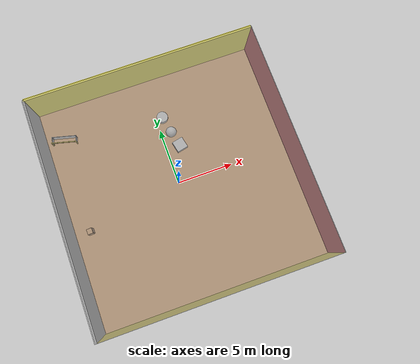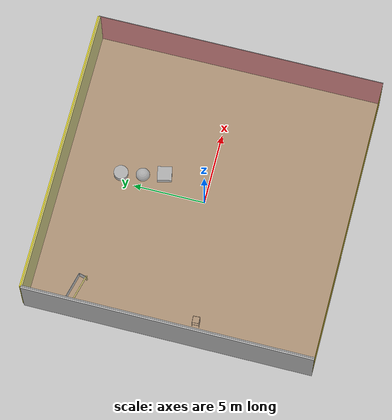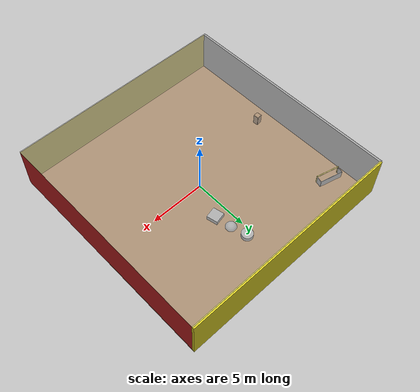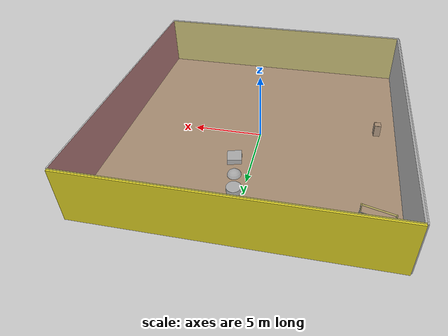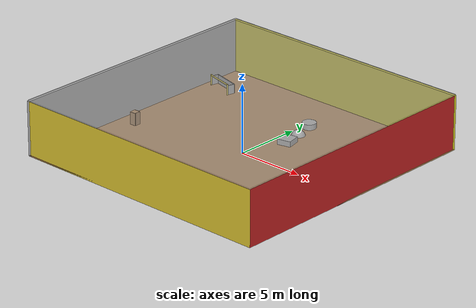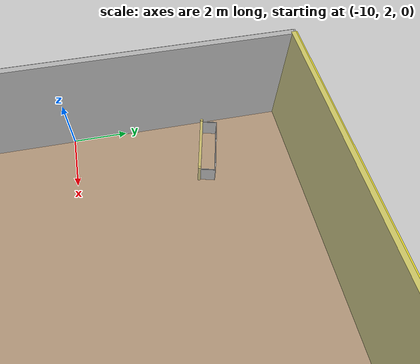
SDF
<sdf version="1.4">
 <world name="default">
  <physics type="ode">
   <max_step_size>0.001</max_step_size>
   <real_time_factor>1</real_time_factor>
   <real_time_update_rate>1000</real_time_update_rate>
   <gravity>0 0 -9.8</gravity>
  </physics>
  <scene><ambient>0.4 0.4 0.4 1</ambient><background>0.7 0.7 0.7 1</background><shadows>1</shadows></scene>
  <model name="Surrounding">
   <static>1</static>
   <link name="Ceiling">
    <collision name="Ceiling_Collision"><geometry><box><size>20 20 0.1</size></box></geometry></collision>
    <visual name="Ceiling_Visual">
     <geometry><box><size>20 20 0.1</size></box></geometry>
     <material>
      <script><uri>file://media/materials/scripts/gazebo.material</uri><name>Gazebo/GreyTransparent</name></script>
     </material>
    </visual>
    <pose>0 0 4.05 0 0 0</pose>
   </link>
   <link name="Wall_South">
    <collision name="Wall_South_Collision">
     <geometry><box><size>20 0 4</size></box></geometry>
     <pose>0 0 2 0 -0 0</pose>
    </collision>
    <visual name="Wall_South_Visual">
     <pose>0 0 2 0 -0 0</pose>
     <geometry><box><size>20 0 4</size></box></geometry>
     <material>
      <script><uri>file://media/materials/scripts/gazebo.material</uri><name>Gazebo/ZincYellow</name></script>
     </material>
    </visual>
    <velocity_decay><linear>0</linear><angular>0</angular></velocity_decay>
    <pose>0 -10 0 0 -0 0</pose>
   </link>
   <link name="Wall_East">
    <collision name="Wall_21_Collision">
     <geometry><box><size>20 0 4</size></box></geometry>
     <pose>0 0 2 0 -0 0</pose>
    </collision>
    <visual name="Wall_21_Visual">
     <pose>0 0 2 0 -0 0</pose>
     <geometry><box><size>20 0 4</size></box></geometry>
     <material>
      <script><uri>file://media/materials/scripts/gazebo.material</uri><name>Gazebo/RedGlow</name></script>
     </material>
    </visual>
    <velocity_decay><linear>0</linear><angular>0</angular></velocity_decay>
    <pose>10 0 0 0 -0 1.5708</pose>
   </link>
   <link name="Wall_North">
    <collision name="Wall_22_Collision">
     <geometry><box><size>20 0.2 4</size></box></geometry>
     <pose>0 0 2 0 -0 0</pose>
    </collision>
    <visual name="Wall_22_Visual">
     <pose>0 0 2 0 -0 0</pose>
     <geometry><box><size>20 0.2 4</size></box></geometry>
     <material>
      <script><uri>file://media/materials/scripts/gazebo.material</uri><name>Gazebo/YellowGlow</name></script>
     </material>
    </visual>
    <velocity_decay><linear>0</linear><angular>0</angular></velocity_decay>
    <pose>0 10 0 0 -0 0</pose>
   </link>
   <link name="Wall_West">
    <collision name="Wall_23_Collision">
     <geometry><box><size>20 0.2 4</size></box></geometry>
     <pose>0 0 2 0 -0 0</pose>
    </collision>
    <visual name="Wall_23_Visual">
     <pose>0 0 2 0 -0 0</pose>
     <geometry><box><size>20 0.2 4</size></box></geometry>
     <material>
      <script><uri>file://media/materials/scripts/gazebo.material</uri><name>Gazebo/LightOff</name></script>
     </material>
    </visual>
    <velocity_decay><linear>0</linear><angular>0</angular></velocity_decay>
    <pose>-10 0 0 0 0 -1.5708</pose>
   </link>
   <link name="Ground_link">
    <collision name="collision">
     <pose>0 0 .05 0 -0 0</pose>
     <geometry><box><size>20 20 0.1</size></box></geometry>
    </collision>
    <visual name="visual">
     <pose>0 0 .05 0 -0 0</pose>
     <geometry><box><size>20 20 0.1</size></box></geometry>
     <material>
      <script><uri>file://media/materials/scripts/gazebo.material</uri><name>Gazebo/WoodFloor</name></script>
     </material>
    </visual>
   </link>
   <static>1</static>
  </model>
  <spherical_coordinates>
   <surface_model>EARTH_WGS84</surface_model>
   <latitude_deg>0</latitude_deg>
   <longitude_deg>0</longitude_deg>
   <elevation>0</elevation>
   <heading_deg>0</heading_deg>
  </spherical_coordinates>
  <light name="lightball_0" type="diffuse">
   <diffuse>0.8 0.8 0.8 1</diffuse>
   <specular>0.2 0.2 0.2 1</specular>
   <attenuation>
    <range>100</range>
    <constant>0.7</constant>
    <linear>0.01</linear>
    <quadratic>0.001</quadratic>
   </attenuation>
   <direction>-0.5 0.1 -0.9</direction>
   <pose>-1.29155754246 -2.591434004 3.73610627514 0 0 0</pose>
  </light>
  <light name="lightball_1" type="diffuse">
   <diffuse>0.8 0.8 0.8 1</diffuse>
   <specular>0.2 0.2 0.2 1</specular>
   <attenuation>
    <range>100</range>
    <constant>0.7</constant>
    <linear>0.01</linear>
    <quadratic>0.001</quadratic>
   </attenuation>
   <direction>-0.5 0.1 -0.9</direction>
   <pose>5.997189561 -4.57302275776 1.16903516043 0 0 0</pose>
  </light>
  <light name="lightball_2" type="diffuse">
   <diffuse>0.8 0.8 0.8 1</diffuse>
   <specular>0.2 0.2 0.2 1</specular>
   <attenuation>
    <range>100</range>
    <constant>0.7</constant>
    <linear>0.01</linear>
    <quadratic>0.001</quadratic>
   </attenuation>
   <direction>-0.5 0.1 -0.9</direction>
   <pose>-8.05813632486 -6.50387849876 2.08735250534 0 0 0</pose>
  </light>
  <light name="lightball_3" type="diffuse">
   <diffuse>0.8 0.8 0.8 1</diffuse>
   <specular>0.2 0.2 0.2 1</specular>
   <attenuation>
    <range>100</range>
    <constant>0.7</constant>
    <linear>0.01</linear>
    <quadratic>0.001</quadratic>
   </attenuation>
   <direction>-0.5 0.1 -0.9</direction>
   <pose>2.71293887337 5.96741877951 2.98597512871 0 0 0</pose>
  </light>
  <light name="lightball_4" type="diffuse">
   <diffuse>0.8 0.8 0.8 1</diffuse>
   <specular>0.2 0.2 0.2 1</specular>
   <attenuation>
    <range>100</range>
    <constant>0.7</constant>
    <linear>0.01</linear>
    <quadratic>0.001</quadratic>
   </attenuation>
   <direction>-0.5 0.1 -0.9</direction>
   <pose>-9.40738092713 6.69734326239 3.75618502431 0 0 0</pose>
  </light>
  <light name="lightball_5" type="diffuse">
   <diffuse>0.8 0.8 0.8 1</diffuse>
   <specular>0.2 0.2 0.2 1</specular>
   <attenuation>
    <range>100</range>
    <constant>0.7</constant>
    <linear>0.01</linear>
    <quadratic>0.001</quadratic>
   </attenuation>
   <direction>-0.5 0.1 -0.9</direction>
   <pose>8.54061769636 -8.75705525696 2.98269568545 0 0 0</pose>
  </light>
  <light name="lightball_6" type="diffuse">
   <diffuse>0.8 0.8 0.8 1</diffuse>
   <specular>0.2 0.2 0.2 1</specular>
   <attenuation>
    <range>100</range>
    <constant>0.7</constant>
    <linear>0.01</linear>
    <quadratic>0.001</quadratic>
   </attenuation>
   <direction>-0.5 0.1 -0.9</direction>
   <pose>3.68931730716 6.32844251958 1.81958151671 0 0 0</pose>
  </light>
  <include><uri>model://cabinet</uri><pose>-8.51083972739 -1.59500065203 0 0 0 0.0533229716681</pose></include>
  <include>
   <uri>model://robocup_3Dsim_goal</uri>
   <pose>-8.370386103 6.60897196141 0 0 0 1.32304293084</pose>
  </include>
  <include>
   <uri>model://textured_shapes</uri>
   <pose>0.900057464726 4.59168123479 0 0 0 0.218277072927</pose>
  </include>
 </world>
</sdf>

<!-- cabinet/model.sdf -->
<sdf version="1.5">
  <model name="cabinet">
    <static>true</static>
    <link name="cabinet_bottom_plate">
      <inertial>
        <pose>0 0 -1 0 0 0</pose>
        <inertia>
          <ixx>2.050000</ixx>
          <ixy>0</ixy>
          <ixz>0</ixz>
          <iyy>2.050000</iyy>
          <iyz>0</iyz>
          <izz>2.050000</izz>
        </inertia>
        <mass>25.000000</mass>
      </inertial>
      <collision name="cabinet_bottom_plate_geom">
        <pose>0 0 0.010000 0 0 0</pose>
        <geometry>
          <box>
            <size>0.450000 0.450000 0.020000</size>
          </box>
        </geometry>
      </collision>
      <visual name="cabinet_bottom_plate_geom_visual">
        <pose>0 0 0.010000 0 0 0</pose>
        <geometry>
          <box>
            <size>0.450000 0.450000 0.020000</size>
          </box>
        </geometry>
        <material>
          <script>
            <uri>model://media/materials/scripts/gazebo.material</uri>
            <name>Gazebo/Wood</name>
          </script>
        </material>
      </visual>
      <collision name="cabinet_bottom_plate_geom_cabinet_back_plate">
        <pose>0.235000 0 0.510000 0 0 0</pose>
        <geometry>
          <box>
            <size>0.020000 0.450000 1.020000</size>
          </box>
        </geometry>
      </collision>
      <visual name="cabinet_bottom_plate_geom_cabinet_back_plate_visual">
        <pose>0.235000 0 0.510000 0 0 0</pose>
        <geometry>
          <box>
            <size>0.020000 0.450000 1.020000</size>
          </box>
        </geometry>
        <material>
          <script>
            <uri>model://media/materials/scripts/gazebo.material</uri>
            <name>Gazebo/Wood</name>
          </script>
        </material>
      </visual>
      <collision name="cabinet_bottom_plate_geom_cabinet_left_plate">
        <pose>0 0.235000 0.510000 0 0 0</pose>
        <geometry>
          <box>
            <size>0.450000 0.020000 1.020000</size>
          </box>
        </geometry>
      </collision>
      <visual name="cabinet_bottom_plate_geom_cabinet_left_plate_visual">
        <pose>0 0.235000 0.510000 0 0 0</pose>
        <geometry>
          <box>
            <size>0.450000 0.020000 1.020000</size>
          </box>
        </geometry>
        <material>
          <script>
            <uri>model://media/materials/scripts/gazebo.material</uri>
            <name>Gazebo/Wood</name>
          </script>
        </material>
      </visual>
      <collision name="cabinet_bottom_plate_geom_cabinet_middle_plate">
        <pose>0 0 0.510000 0 0 0</pose>
        <geometry>
          <box>
            <size>0.450000 0.450000 0.020000</size>
          </box>
        </geometry>
      </collision>
      <visual name="cabinet_bottom_plate_geom_cabinet_middle_plate_visual">
        <pose>0 0 0.510000 0 0 0</pose>
        <geometry>
          <box>
            <size>0.450000 0.450000 0.020000</size>
          </box>
        </geometry>
        <material>
          <script>
            <uri>model://media/materials/scripts/gazebo.material</uri>
            <name>Gazebo/Wood</name>
          </script>
        </material>
      </visual>
      <collision name="cabinet_bottom_plate_geom_cabinet_right_plate">
        <pose>0 -0.235000 0.510000 0 0 0</pose>
        <geometry>
          <box>
            <size>0.450000 0.020000 1.020000</size>
          </box>
        </geometry>
      </collision>
      <visual name="cabinet_bottom_plate_geom_cabinet_right_plate_visual">
        <pose>0 -0.235000 0.510000 0 0 0</pose>
        <geometry>
          <box>
            <size>0.450000 0.020000 1.020000</size>
          </box>
        </geometry>
        <material>
          <script>
            <uri>model://media/materials/scripts/gazebo.material</uri>
            <name>Gazebo/Wood</name>
          </script>
        </material>
      </visual>
      <collision name="cabinet_bottom_plate_geom_cabinet_top_plate">
        <pose>0 0 1.010000 0 0 0</pose>
        <geometry>
          <box>
            <size>0.450000 0.450000 0.020000</size>
          </box>
        </geometry>
      </collision>
      <visual name="cabinet_bottom_plate_geom_cabinet_top_plate_visual">
        <pose>0 0 1.010000 0 0 0</pose>
        <geometry>
          <box>
            <size>0.450000 0.450000 0.020000</size>
          </box>
        </geometry>
        <material>
          <script>
            <uri>model://media/materials/scripts/gazebo.material</uri>
            <name>Gazebo/Wood</name>
          </script>
        </material>
      </visual>
    </link>
  </model>
</sdf>

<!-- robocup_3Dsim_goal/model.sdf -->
<sdf version="1.5">
  <model name="robocup_3d_goal">
    <static>true</static>
    <link name="left_post">
      <pose>0 1.05 0.45 0 0 0</pose>
      <collision name="collision">
        <geometry>
          <cylinder>
            <radius>0.05</radius>
            <length>0.9</length>
          </cylinder>
        </geometry>
      </collision>
      <visual name="visual">
        <geometry>
          <cylinder>
            <radius>0.05</radius>
            <length>0.9</length>
          </cylinder>
        </geometry>
        <material>
          <script>
            <uri>file://media/materials/scripts/gazebo.material</uri>
            <name>Gazebo/ZincYellow</name>
          </script>
        </material>
      </visual>
    </link>
    <link name="left_support_horiz_lower">
      <pose>0.30 1.05 0.01 0 0 0</pose>
      <collision name="collision">
        <geometry>
          <box>
            <size>0.50 0.02 0.02</size>
          </box>
        </geometry>
      </collision>
      <visual name="visual">
        <geometry>
          <box>
            <size>0.50 0.02 0.02</size>
          </box>
        </geometry>
        <material>
          <script>
            <uri>file://media/materials/scripts/gazebo.material</uri>
            <name>Gazebo/White</name>
          </script>
        </material>
      </visual>
    </link>
    <link name="left_support_horiz_upper">
      <pose>0.30 1.05 0.79 0 0 0</pose>
      <collision name="collision">
        <geometry>
          <box>
            <size>0.50 0.02 0.02</size>
          </box>
        </geometry>
      </collision>
      <visual name="visual">
        <geometry>
          <box>
            <size>0.50 0.02 0.02</size>
          </box>
        </geometry>
        <material>
          <script>
            <uri>file://media/materials/scripts/gazebo.material</uri>
            <name>Gazebo/White</name>
          </script>
        </material>
      </visual>
    </link>
    <link name="left_support_vertical">
      <pose>0.56 1.05 0.4 0 1.5708 0</pose>
      <collision name="collision">
        <geometry>
          <box>
            <size>0.80 0.02 0.02</size>
          </box>
        </geometry>
      </collision>
      <visual name="visual">
        <geometry>
          <box>
            <size>0.80 0.02 0.02</size>
          </box>
        </geometry>
        <material>
          <script>
            <uri>file://media/materials/scripts/gazebo.material</uri>
            <name>Gazebo/White</name>
          </script>
        </material>
      </visual>
    </link>
    <link name="right_support_horiz_lower">
      <pose>0.30 -1.05 0.01 0 0 0</pose>
      <collision name="collision">
        <geometry>
          <box>
            <size>0.50 0.02 0.02</size>
          </box>
        </geometry>
      </collision>
      <visual name="visual">
        <geometry>
          <box>
            <size>0.50 0.02 0.02</size>
          </box>
        </geometry>
        <material>
          <script>
            <uri>file://media/materials/scripts/gazebo.material</uri>
            <name>Gazebo/White</name>
          </script>
        </material>
      </visual>
    </link>
    <link name="right_support_horiz_upper">
      <pose>0.30 -1.05 0.79 0 0 0</pose>
      <collision name="collision">
        <geometry>
          <box>
            <size>0.50 0.02 0.02</size>
          </box>
        </geometry>
      </collision>
      <visual name="visual">
        <geometry>
          <box>
            <size>0.50 0.02 0.02</size>
          </box>
        </geometry>
        <material>
          <script>
            <uri>file://media/materials/scripts/gazebo.material</uri>
            <name>Gazebo/White</name>
          </script>
        </material>
      </visual>
    </link>
    <link name="right_support_vertical">
      <pose>0.56 -1.05 0.4 0 1.5708 0</pose>
      <collision name="collision">
        <geometry>
          <box>
            <size>0.80 0.02 0.02</size>
          </box>
        </geometry>
      </collision>
      <visual name="visual">
        <geometry>
          <box>
            <size>0.80 0.02 0.02</size>
          </box>
        </geometry>
        <material>
          <script>
            <uri>file://media/materials/scripts/gazebo.material</uri>
            <name>Gazebo/White</name>
          </script>
        </material>
      </visual>
    </link>
    <link name="center_support_horiz_lower">
      <pose>0.56 0 0.01 0 1.5708 0</pose>
      <collision name="collision">
        <geometry>
          <box>
            <size>0.02 2.08 0.02</size>
          </box>
        </geometry>
      </collision>
      <visual name="visual">
        <geometry>
          <box>
            <size>0.02 2.08 0.02</size>
          </box>
        </geometry>
        <material>
          <script>
            <uri>file://media/materials/scripts/gazebo.material</uri>
            <name>Gazebo/White</name>
          </script>
        </material>
      </visual>
    </link>
    <link name="center_support_horiz_upper">
      <pose>0.56 0 0.79 0 1.5708 0</pose>
      <collision name="collision">
        <geometry>
          <box>
            <size>0.02 2.08 0.02</size>
          </box>
        </geometry>
      </collision>
      <visual name="visual">
        <geometry>
          <box>
            <size>0.02 2.08 0.02</size>
          </box>
        </geometry>
        <material>
          <script>
            <uri>file://media/materials/scripts/gazebo.material</uri>
            <name>Gazebo/White</name>
          </script>
        </material>
      </visual>
    </link>
    <link name="right_post">
      <pose>0 -1.05 0.45 0 0 0</pose>
      <collision name="collision">
        <geometry>
          <cylinder>
            <radius>0.05</radius>
            <length>0.9</length>
          </cylinder>
        </geometry>
      </collision>
      <visual name="visual">
        <geometry>
          <cylinder>
            <radius>0.05</radius>
            <length>0.9</length>
          </cylinder>
        </geometry>
        <material>
          <script>
            <uri>file://media/materials/scripts/gazebo.material</uri>
            <name>Gazebo/ZincYellow</name>
          </script>
        </material>
      </visual>
    </link>
    <link name="crossbar">
      <pose>0 0 0.85 1.57 1.57 0</pose>
      <collision name="collision">
        <geometry>
          <cylinder>
            <radius>0.05</radius>
            <length>2.0</length>
          </cylinder>
        </geometry>
      </collision>
      <visual name="visual">
        <geometry>
          <cylinder>
            <radius>0.05</radius>
            <length>2.0</length>
          </cylinder>
        </geometry>
        <material>
          <script>
            <uri>file://media/materials/scripts/gazebo.material</uri>
            <name>Gazebo/ZincYellow</name>
          </script>
        </material>
      </visual>
    </link>
    <link name="center_net">
      <pose>0.56 0 0.40 0 0 0</pose>
      <collision name="collision">
        <geometry>
          <box>
            <size>0.01 2.1 0.80</size>
          </box>
        </geometry>
      </collision>
      <visual name="visual">
        <geometry>
          <box>
            <size>0.01 2.1 0.80</size>
          </box>
        </geometry>
        <material>
          <script>
            <uri>model://../model_source/models/robocup09_spl_field/materials/scripts/</uri>
            <uri>model://../model_source/models/robocup09_spl_field/materials/textures/</uri>
            <name>RoboCup/Net</name>
          </script>
        </material>
      </visual>
    </link>
    <link name="left_net">
      <pose>0.30 1.05 0.40 0 0 0</pose>
      <collision name="collision">
        <geometry>
          <box>
            <size>0.50 0.01 0.76</size>
          </box>
        </geometry>
      </collision>
      <visual name="visual">
        <geometry>
          <box>
            <size>0.50 0.01 0.76</size>
          </box>
        </geometry>
        <material>
          <script>
            <uri>model://../model_source/models/robocup09_spl_field/materials/scripts/</uri>
            <uri>model://../model_source/models/robocup09_spl_field/materials/textures/</uri>
            <name>RoboCup/Net</name>
          </script>
        </material>
      </visual>
    </link>
    <link name="right_net">
      <pose>0.30 -1.05 0.40 0 0 0</pose>
      <collision name="collision">
        <geometry>
          <box>
            <size>0.50 0.01 0.76</size>
          </box>
        </geometry>
      </collision>
      <visual name="visual">
        <geometry>
          <box>
            <size>0.50 0.01 0.76</size>
          </box>
        </geometry>
        <material>
          <script>
            <uri>model://../model_source/models/robocup09_spl_field/materials/scripts/</uri>
            <uri>model://../model_source/models/robocup09_spl_field/materials/textures/</uri>
            <name>RoboCup/Net</name>
          </script>
        </material>
      </visual>
    </link>
  </model>
</sdf>

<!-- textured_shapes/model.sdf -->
<sdf version="1.6">
  <model name="textured_shapes">
    <pose>0 0 0.5 0 0 0</pose>
    <link name="box">
      <pose>0 -1.5 0 0 0 0</pose>
      <collision name="collision">
        <geometry>
          <box>
            <size>1 1 1</size>
          </box>
        </geometry>
      </collision>
      <visual name="visual">
        <geometry>
          <box>
            <size>1 1 1</size>
          </box>
        </geometry>
        <material>
          <script>
            <uri>model://../model_source/models/textured_shapes/materials/scripts</uri>
            <uri>model://../model_source/models/textured_shapes/materials/textures</uri>
            <name>TexturedShape/Squares</name>
          </script>
        </material>
      </visual>
    </link>
    <link name="sphere">
      <collision name="collision">
        <geometry>
          <sphere>
            <radius>0.5</radius>
          </sphere>
        </geometry>
      </collision>
      <visual name="visual">
        <geometry>
          <sphere>
            <radius>0.5</radius>
          </sphere>
        </geometry>
        <material>
          <script>
            <uri>model://../model_source/models/textured_shapes/materials/scripts</uri>
            <uri>model://../model_source/models/textured_shapes/materials/textures</uri>
            <name>TexturedShape/Squares</name>
          </script>
        </material>
      </visual>
    </link>
    <link name="cylinder">
      <pose>0 1.5 0 0 0 0</pose>
      <collision name="collision">
        <geometry>
          <cylinder>
            <radius>0.5</radius>
            <length>1</length>
          </cylinder>
        </geometry>
      </collision>
      <visual name="visual">
        <geometry>
          <cylinder>
            <radius>0.5</radius>
            <length>1</length>
          </cylinder>
        </geometry>
        <material>
          <script>
            <uri>model://../model_source/models/textured_shapes/materials/scripts</uri>
            <uri>model://../model_source/models/textured_shapes/materials/textures</uri>
            <name>TexturedShape/Squares</name>
          </script>
        </material>
      </visual>
    </link>
  </model>
</sdf>
